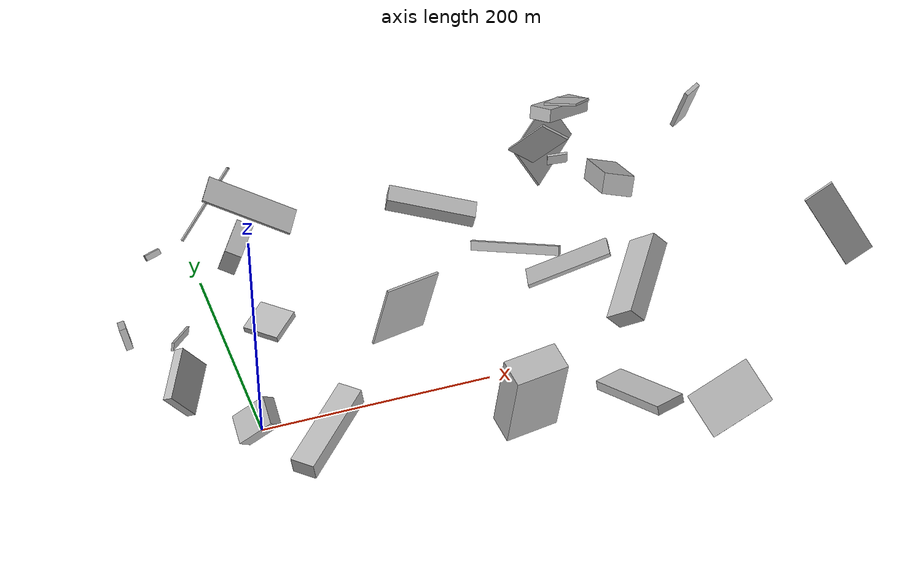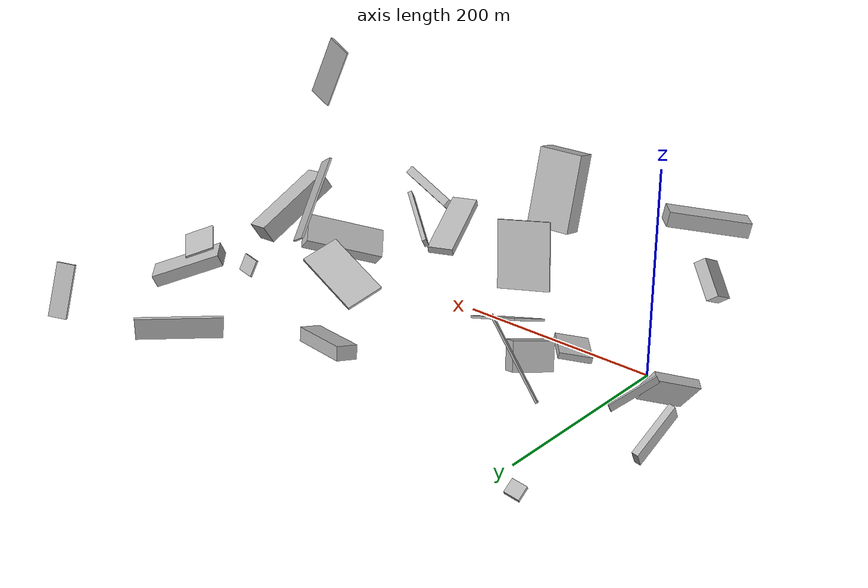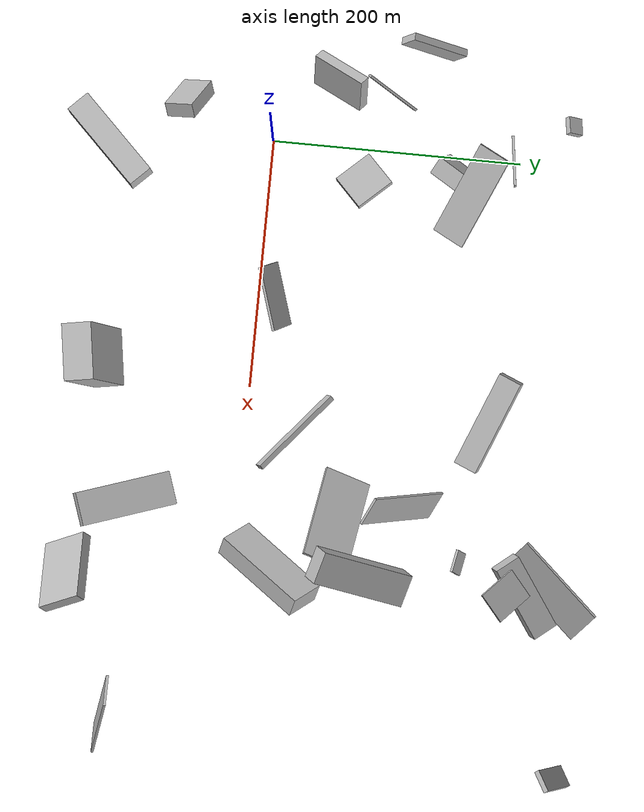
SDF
<sdf version="1.6">
 <world name="default">
  <scene>
   <sky><clouds><speed>12</speed></clouds></sky>
   <ambient>0.4 0.4 0.4 1</ambient>
   <background>0.7 0.7 0.7 1</background>
   <shadows>1</shadows>
  </scene>
  <gravity>0 0 -9.8066</gravity>
  <magnetic_field>6e-06 2.3e-05 -4.2e-05</magnetic_field>
  <physics default="0" name="default_physics" type="ode">
   <ode>
    <solver>
     <type>quick</type>
     <iters>10</iters>
     <sor>1.0</sor>
     <use_dynamic_moi_rescaling>0</use_dynamic_moi_rescaling>
    </solver>
    <constraints>
     <cfm>0</cfm>
     <erp>0.2</erp>
     <contact_max_correcting_vel>100</contact_max_correcting_vel>
     <contact_surface_layer>0.001</contact_surface_layer>
    </constraints>
   </ode>
   <max_step_size>0.004</max_step_size>
   <real_time_factor>1</real_time_factor>
   <real_time_update_rate>250</real_time_update_rate>
  </physics>
  <light name="sun" type="directional">
   <pose>0 0 10 0 0 0</pose>
   <diffuse>0.8 0.8 0.8 1</diffuse>
   <specular>0.2 0.2 0.2 1</specular>
   <attenuation>
    <range>1000</range>
    <constant>0.9</constant>
    <linear>0.01</linear>
    <quadratic>0.001</quadratic>
   </attenuation>
   <direction>-0.5 0.1 -0.9</direction>
  </light>
  <model name="building_1">
   <static>0</static>
   <pose>283.5771730482664 155.34911142007553 103.31907290278801 0.5777461228501118 -0.475425953244051 0.8320886565159674</pose>
   <link name="link">
    <gravity>0</gravity>
    <pose>0 0 40.0 0 0 0</pose>
    <collision name="collision"><geometry><box><size>2 25 80</size></box></geometry></collision>
    <visual name="visual">
     <cast_shadows>0</cast_shadows>
     <geometry><box><size>2 25 80</size></box></geometry>
     <material>
      <script>
       <uri>model://HANNAS_wall/materials/scripts</uri>
       <uri>model://HANNAS_wall/materials/textures</uri>
       <name>vrc/HANNAS_wall</name>
      </script>
     </material>
    </visual>
   </link>
  </model>
  <model name="building_2">
   <static>0</static>
   <pose>287.11291797389237 -94.1861931204462 31.01202971929794 1.6834394513047986 -1.2453796542585034 1.7910672132059604</pose>
   <link name="link">
    <gravity>0</gravity>
    <pose>0 0 13.5 0 0 0</pose>
    <collision name="collision"><geometry><box><size>8 80 27</size></box></geometry></collision>
    <visual name="visual">
     <cast_shadows>0</cast_shadows>
     <geometry><box><size>8 80 27</size></box></geometry>
     <material>
      <script>
       <uri>model://HANNAS_wall/materials/scripts</uri>
       <uri>model://HANNAS_wall/materials/textures</uri>
       <name>vrc/HANNAS_wall</name>
      </script>
     </material>
    </visual>
   </link>
  </model>
  <model name="building_3">
   <static>0</static>
   <pose>339.25599038372405 31.716365428292576 49.29509362847568 2.4156392373363 -0.32800505573607597 0.94048847666547</pose>
   <link name="link">
    <gravity>0</gravity>
    <pose>0 0 8.5 0 0 0</pose>
    <collision name="collision"><geometry><box><size>80 30 17</size></box></geometry></collision>
    <visual name="visual">
     <cast_shadows>0</cast_shadows>
     <geometry><box><size>80 30 17</size></box></geometry>
     <material>
      <script>
       <uri>model://HANNAS_wall/materials/scripts</uri>
       <uri>model://HANNAS_wall/materials/textures</uri>
       <name>vrc/HANNAS_wall</name>
      </script>
     </material>
    </visual>
   </link>
  </model>
  <model name="building_4">
   <static>0</static>
   <pose>211.5348605283108 194.57633050719548 30.623981953100593 -0.21436274314313775 0.13054032204460828 -1.9781740426536427</pose>
   <link name="link">
    <gravity>0</gravity>
    <pose>0 0 6.5 0 0 0</pose>
    <collision name="collision"><geometry><box><size>19 80 13</size></box></geometry></collision>
    <visual name="visual">
     <cast_shadows>0</cast_shadows>
     <geometry><box><size>19 80 13</size></box></geometry>
     <material>
      <script>
       <uri>model://HANNAS_wall/materials/scripts</uri>
       <uri>model://HANNAS_wall/materials/textures</uri>
       <name>vrc/HANNAS_wall</name>
      </script>
     </material>
    </visual>
   </link>
  </model>
  <model name="building_5">
   <static>0</static>
   <pose>-26.61718814398395 241.26637886498096 12.131740036504144 1.8704918844281946 -0.6383534397535083 -1.6099501404170797</pose>
   <link name="link">
    <gravity>0</gravity>
    <pose>0 0 7.0 0 0 0</pose>
    <collision name="collision"><geometry><box><size>13 5 14</size></box></geometry></collision>
    <visual name="visual">
     <cast_shadows>0</cast_shadows>
     <geometry><box><size>13 5 14</size></box></geometry>
     <material>
      <script>
       <uri>model://HANNAS_wall/materials/scripts</uri>
       <uri>model://HANNAS_wall/materials/textures</uri>
       <name>vrc/HANNAS_wall</name>
      </script>
     </material>
    </visual>
   </link>
  </model>
  <model name="building_6">
   <static>0</static>
   <pose>-32.92865159070607 111.34914237968215 27.71513628705622 1.1589942842589054 0.068522941731135 -0.5372851993930543</pose>
   <link name="link">
    <gravity>0</gravity>
    <pose>0 0 24.0 0 0 0</pose>
    <collision name="collision"><geometry><box><size>2 7 48</size></box></geometry></collision>
    <visual name="visual">
     <cast_shadows>0</cast_shadows>
     <geometry><box><size>2 7 48</size></box></geometry>
     <material>
      <script>
       <uri>model://HANNAS_wall/materials/scripts</uri>
       <uri>model://HANNAS_wall/materials/textures</uri>
       <name>vrc/HANNAS_wall</name>
      </script>
     </material>
    </visual>
   </link>
  </model>
  <model name="building_7">
   <static>0</static>
   <pose>342.27715242534674 97.55847702041088 95.03572211778373 -0.2275040916909457 -0.49188798975796616 -1.732307156946758</pose>
   <link name="link">
    <gravity>0</gravity>
    <pose>0 0 9.0 0 0 0</pose>
    <collision name="collision"><geometry><box><size>80 26 18</size></box></geometry></collision>
    <visual name="visual">
     <cast_shadows>0</cast_shadows>
     <geometry><box><size>80 26 18</size></box></geometry>
     <material>
      <script>
       <uri>model://HANNAS_wall/materials/scripts</uri>
       <uri>model://HANNAS_wall/materials/textures</uri>
       <name>vrc/HANNAS_wall</name>
      </script>
     </material>
    </visual>
   </link>
  </model>
  <model name="building_8">
   <static>0</static>
   <pose>155.46462103562985 22.38105259529572 81.91498346491821 1.4643973791616303 0.22538208690904812 -1.2850660911985778</pose>
   <link name="link">
    <gravity>0</gravity>
    <pose>0 0 25.5 0 0 0</pose>
    <collision name="collision"><geometry><box><size>2 65 51</size></box></geometry></collision>
    <visual name="visual">
     <cast_shadows>0</cast_shadows>
     <geometry><box><size>2 65 51</size></box></geometry>
     <material>
      <script>
       <uri>model://HANNAS_wall/materials/scripts</uri>
       <uri>model://HANNAS_wall/materials/textures</uri>
       <name>vrc/HANNAS_wall</name>
      </script>
     </material>
    </visual>
   </link>
  </model>
  <model name="building_9">
   <static>0</static>
   <pose>41.02112749588033 86.08538356571486 51.00431334296111 2.8614211854459803 1.3599376114798205 0.46959963565774904</pose>
   <link name="link">
    <gravity>0</gravity>
    <pose>0 0 15.0 0 0 0</pose>
    <collision name="collision"><geometry><box><size>6 33 30</size></box></geometry></collision>
    <visual name="visual">
     <cast_shadows>0</cast_shadows>
     <geometry><box><size>6 33 30</size></box></geometry>
     <material>
      <script>
       <uri>model://HANNAS_wall/materials/scripts</uri>
       <uri>model://HANNAS_wall/materials/textures</uri>
       <name>vrc/HANNAS_wall</name>
      </script>
     </material>
    </visual>
   </link>
  </model>
  <model name="building_10">
   <static>0</static>
   <pose>51.099746943938726 -97.70823138861373 111.21458630041522 -1.75290860212293 0.01671970912278321 2.3487859522068932</pose>
   <link name="link">
    <gravity>0</gravity>
    <pose>0 0 40.0 0 0 0</pose>
    <collision name="collision"><geometry><box><size>20 15 80</size></box></geometry></collision>
    <visual name="visual">
     <cast_shadows>0</cast_shadows>
     <geometry><box><size>20 15 80</size></box></geometry>
     <material>
      <script>
       <uri>model://HANNAS_wall/materials/scripts</uri>
       <uri>model://HANNAS_wall/materials/textures</uri>
       <name>vrc/HANNAS_wall</name>
      </script>
     </material>
    </visual>
   </link>
  </model>
  <model name="building_11">
   <static>0</static>
   <pose>73.28578281351808 145.9075765301604 91.05620688472548 1.1599386214123701 0.1889545770524175 -2.0692607060016712</pose>
   <link name="link">
    <gravity>0</gravity>
    <pose>0 0 40.0 0 0 0</pose>
    <collision name="collision"><geometry><box><size>27 2 80</size></box></geometry></collision>
    <visual name="visual">
     <cast_shadows>0</cast_shadows>
     <geometry><box><size>27 2 80</size></box></geometry>
     <material>
      <script>
       <uri>model://HANNAS_wall/materials/scripts</uri>
       <uri>model://HANNAS_wall/materials/textures</uri>
       <name>vrc/HANNAS_wall</name>
      </script>
     </material>
    </visual>
   </link>
  </model>
  <model name="building_12">
   <static>0</static>
   <pose>-87.5875860497974 100.60032907893742 41.7587584548991 2.7987793833026977 -0.9539100488696111 1.8496998958437345</pose>
   <link name="link">
    <gravity>0</gravity>
    <pose>0 0 26.0 0 0 0</pose>
    <collision name="collision"><geometry><box><size>18 6 52</size></box></geometry></collision>
    <visual name="visual">
     <cast_shadows>0</cast_shadows>
     <geometry><box><size>18 6 52</size></box></geometry>
     <material>
      <script>
       <uri>model://HANNAS_wall/materials/scripts</uri>
       <uri>model://HANNAS_wall/materials/textures</uri>
       <name>vrc/HANNAS_wall</name>
      </script>
     </material>
    </visual>
   </link>
  </model>
  <model name="building_13">
   <static>0</static>
   <pose>364.1088471769185 -128.5546834321074 37.21786809602442 0.5747115865106968 0.6143351221133861 -1.1917304856219764</pose>
   <link name="link">
    <gravity>0</gravity>
    <pose>0 0 4.5 0 0 0</pose>
    <collision name="collision"><geometry><box><size>40 57 9</size></box></geometry></collision>
    <visual name="visual">
     <cast_shadows>0</cast_shadows>
     <geometry><box><size>40 57 9</size></box></geometry>
     <material>
      <script>
       <uri>model://HANNAS_wall/materials/scripts</uri>
       <uri>model://HANNAS_wall/materials/textures</uri>
       <name>vrc/HANNAS_wall</name>
      </script>
     </material>
    </visual>
   </link>
  </model>
  <model name="building_14">
   <static>0</static>
   <pose>190.60739470642264 -113.01191707002286 52.21878464101348 -0.023409180165641457 -0.2584941653966753 1.7211086248849978</pose>
   <link name="link">
    <gravity>0</gravity>
    <pose>0 0 40.0 0 0 0</pose>
    <collision name="collision"><geometry><box><size>24 45 80</size></box></geometry></collision>
    <visual name="visual">
     <cast_shadows>0</cast_shadows>
     <geometry><box><size>24 45 80</size></box></geometry>
     <material>
      <script>
       <uri>model://HANNAS_wall/materials/scripts</uri>
       <uri>model://HANNAS_wall/materials/textures</uri>
       <name>vrc/HANNAS_wall</name>
      </script>
     </material>
    </visual>
   </link>
  </model>
  <model name="building_15">
   <static>0</static>
   <pose>-19.076069444683753 -56.915843987709295 81.46683731883883 -2.2185013700497023 0.774463109032783 2.6419754312238344</pose>
   <link name="link">
    <gravity>0</gravity>
    <pose>0 0 12.0 0 0 0</pose>
    <collision name="collision"><geometry><box><size>37 12 24</size></box></geometry></collision>
    <visual name="visual">
     <cast_shadows>0</cast_shadows>
     <geometry><box><size>37 12 24</size></box></geometry>
     <material>
      <script>
       <uri>model://HANNAS_wall/materials/scripts</uri>
       <uri>model://HANNAS_wall/materials/textures</uri>
       <name>vrc/HANNAS_wall</name>
      </script>
     </material>
    </visual>
   </link>
  </model>
  <model name="building_16">
   <static>0</static>
   <pose>-54.01674185062554 52.47913910461992 23.919895917870754 1.0171817597805373 -0.3653235630114356 1.0758842432435394</pose>
   <link name="link">
    <gravity>0</gravity>
    <pose>0 0 4.5 0 0 0</pose>
    <collision name="collision"><geometry><box><size>47 31 9</size></box></geometry></collision>
    <visual name="visual">
     <cast_shadows>0</cast_shadows>
     <geometry><box><size>47 31 9</size></box></geometry>
     <material>
      <script>
       <uri>model://HANNAS_wall/materials/scripts</uri>
       <uri>model://HANNAS_wall/materials/textures</uri>
       <name>vrc/HANNAS_wall</name>
      </script>
     </material>
    </visual>
   </link>
  </model>
  <model name="building_17">
   <static>0</static>
   <pose>314.1343862490385 224.7259163715636 30.536480303434036 1.50906902555632 -0.9333245657288759 2.450976201717461</pose>
   <link name="link">
    <gravity>0</gravity>
    <pose>0 0 40.0 0 0 0</pose>
    <collision name="collision"><geometry><box><size>41 2 80</size></box></geometry></collision>
    <visual name="visual">
     <cast_shadows>0</cast_shadows>
     <geometry><box><size>41 2 80</size></box></geometry>
     <material>
      <script>
       <uri>model://HANNAS_wall/materials/scripts</uri>
       <uri>model://HANNAS_wall/materials/textures</uri>
       <name>vrc/HANNAS_wall</name>
      </script>
     </material>
    </visual>
   </link>
  </model>
  <model name="building_18">
   <static>0</static>
   <pose>354.72550618608176 223.9288989777511 86.8679026325662 -1.9689328198575635 -1.164119870695745 1.0471111608808004</pose>
   <link name="link">
    <gravity>0</gravity>
    <pose>0 0 10.5 0 0 0</pose>
    <collision name="collision"><geometry><box><size>12 66 21</size></box></geometry></collision>
    <visual name="visual">
     <cast_shadows>0</cast_shadows>
     <geometry><box><size>12 66 21</size></box></geometry>
     <material>
      <script>
       <uri>model://HANNAS_wall/materials/scripts</uri>
       <uri>model://HANNAS_wall/materials/textures</uri>
       <name>vrc/HANNAS_wall</name>
      </script>
     </material>
    </visual>
   </link>
  </model>
  <model name="building_19">
   <static>0</static>
   <pose>360.40387858769196 206.34814712910867 107.10369712412597 -2.2039608940172966 -1.123723287031069 1.3973833613771973</pose>
   <link name="link">
    <gravity>0</gravity>
    <pose>0 0 16.0 0 0 0</pose>
    <collision name="collision"><geometry><box><size>2 27 32</size></box></geometry></collision>
    <visual name="visual">
     <cast_shadows>0</cast_shadows>
     <geometry><box><size>2 27 32</size></box></geometry>
     <material>
      <script>
       <uri>model://HANNAS_wall/materials/scripts</uri>
       <uri>model://HANNAS_wall/materials/textures</uri>
       <name>vrc/HANNAS_wall</name>
      </script>
     </material>
    </visual>
   </link>
  </model>
  <model name="building_20">
   <static>0</static>
   <pose>299.89714491533323 80.17454609492125 37.390088806940796 2.772143472476444 0.3277369133285333 1.280064840685742</pose>
   <link name="link">
    <gravity>0</gravity>
    <pose>0 0 1.5 0 0 0</pose>
    <collision name="collision"><geometry><box><size>39 76 3</size></box></geometry></collision>
    <visual name="visual">
     <cast_shadows>0</cast_shadows>
     <geometry><box><size>39 76 3</size></box></geometry>
     <material>
      <script>
       <uri>model://HANNAS_wall/materials/scripts</uri>
       <uri>model://HANNAS_wall/materials/textures</uri>
       <name>vrc/HANNAS_wall</name>
      </script>
     </material>
    </visual>
   </link>
  </model>
  <model name="building_21">
   <static>0</static>
   <pose>325.17804387329613 175.03241194942575 79.72010530127056 -3.0632185318118497 0.4397738152062123 -1.7241130729253764</pose>
   <link name="link">
    <gravity>0</gravity>
    <pose>0 0 8.0 0 0 0</pose>
    <collision name="collision"><geometry><box><size>2 18 16</size></box></geometry></collision>
    <visual name="visual">
     <cast_shadows>0</cast_shadows>
     <geometry><box><size>2 18 16</size></box></geometry>
     <material>
      <script>
       <uri>model://HANNAS_wall/materials/scripts</uri>
       <uri>model://HANNAS_wall/materials/textures</uri>
       <name>vrc/HANNAS_wall</name>
      </script>
     </material>
    </visual>
   </link>
  </model>
  <model name="building_22">
   <static>0</static>
   <pose>458.5054783524197 -87.4053898894169 155.53603065920987 -1.0662669016678956 -0.10622383644882599 -1.615372798218008</pose>
   <link name="link">
    <gravity>0</gravity>
    <pose>0 0 13.0 0 0 0</pose>
    <collision name="collision"><geometry><box><size>2 80 26</size></box></geometry></collision>
    <visual name="visual">
     <cast_shadows>0</cast_shadows>
     <geometry><box><size>2 80 26</size></box></geometry>
     <material>
      <script>
       <uri>model://HANNAS_wall/materials/scripts</uri>
       <uri>model://HANNAS_wall/materials/textures</uri>
       <name>vrc/HANNAS_wall</name>
      </script>
     </material>
    </visual>
   </link>
  </model>
  <model name="building_23">
   <static>0</static>
   <pose>28.77433238770665 146.85381270065426 71.32140326140564 -1.22009653001467 -0.1540870124561747 1.0094740369213404</pose>
   <link name="link">
    <gravity>0</gravity>
    <pose>0 0 7.5 0 0 0</pose>
    <collision name="collision"><geometry><box><size>37 26 15</size></box></geometry></collision>
    <visual name="visual">
     <cast_shadows>0</cast_shadows>
     <geometry><box><size>37 26 15</size></box></geometry>
     <material>
      <script>
       <uri>model://HANNAS_wall/materials/scripts</uri>
       <uri>model://HANNAS_wall/materials/textures</uri>
       <name>vrc/HANNAS_wall</name>
      </script>
     </material>
    </visual>
   </link>
  </model>
  <model name="building_24">
   <static>0</static>
   <pose>236.60132834038464 38.99860863552766 96.56002183424266 -0.22598745951108126 0.4193455483897232 0.7865902416714304</pose>
   <link name="link">
    <gravity>0</gravity>
    <pose>0 0 4.0 0 0 0</pose>
    <collision name="collision"><geometry><box><size>4 80 8</size></box></geometry></collision>
    <visual name="visual">
     <cast_shadows>0</cast_shadows>
     <geometry><box><size>4 80 8</size></box></geometry>
     <material>
      <script>
       <uri>model://HANNAS_wall/materials/scripts</uri>
       <uri>model://HANNAS_wall/materials/textures</uri>
       <name>vrc/HANNAS_wall</name>
      </script>
     </material>
    </visual>
   </link>
  </model>
  <model name="building_25">
   <static>0</static>
   <pose>-15.029465376755015 190.383924509893 60.37083325750084 0.6096330855324796 -0.05568139572036751 1.7177360681259337</pose>
   <link name="link">
    <gravity>0</gravity>
    <pose>0 0 40.0 0 0 0</pose>
    <collision name="collision"><geometry><box><size>2 2 80</size></box></geometry></collision>
    <visual name="visual">
     <cast_shadows>0</cast_shadows>
     <geometry><box><size>2 2 80</size></box></geometry>
     <material>
      <script>
       <uri>model://HANNAS_wall/materials/scripts</uri>
       <uri>model://HANNAS_wall/materials/textures</uri>
       <name>vrc/HANNAS_wall</name>
      </script>
     </material>
    </visual>
   </link>
  </model>
  <model name="building_26">
   <static>0</static>
   <pose>482.0371453223032 266.0463857887212 26.841068264771977 -1.2606317250986843 -1.1819511115539256 -1.3429253772792527</pose>
   <link name="link">
    <gravity>0</gravity>
    <pose>0 0 9.0 0 0 0</pose>
    <collision name="collision"><geometry><box><size>53 4 18</size></box></geometry></collision>
    <visual name="visual">
     <cast_shadows>0</cast_shadows>
     <geometry><box><size>53 4 18</size></box></geometry>
     <material>
      <script>
       <uri>model://HANNAS_wall/materials/scripts</uri>
       <uri>model://HANNAS_wall/materials/textures</uri>
       <name>vrc/HANNAS_wall</name>
      </script>
     </material>
    </visual>
   </link>
  </model>
 </world>
</sdf>
